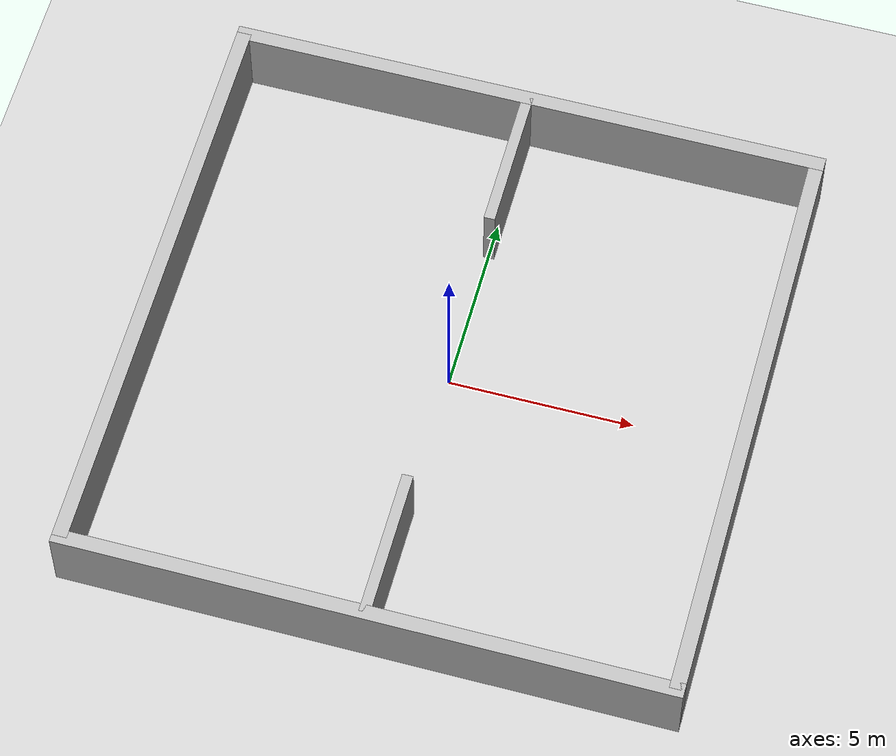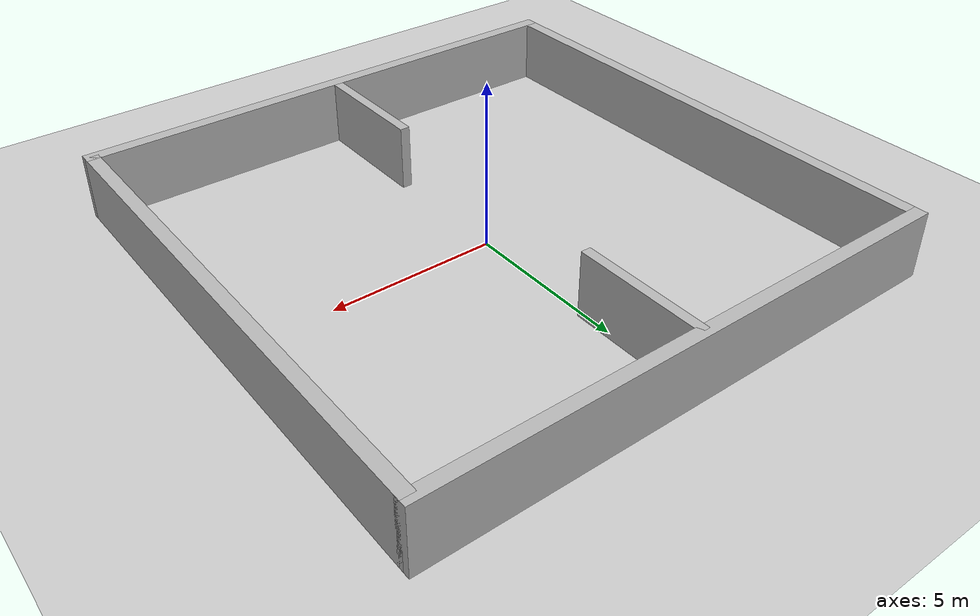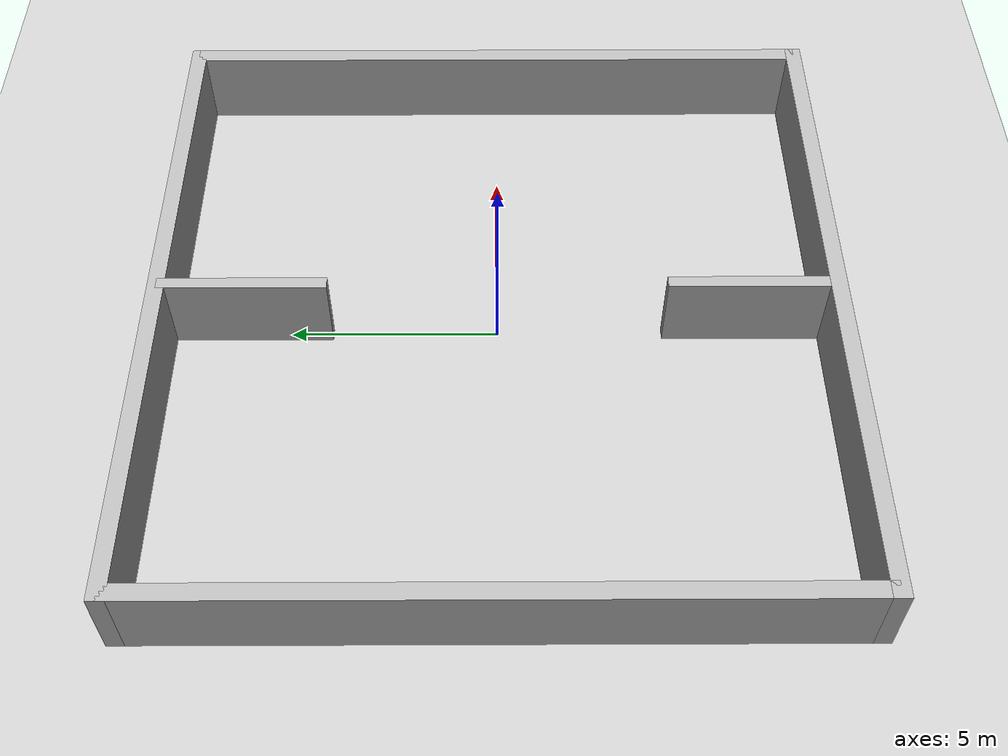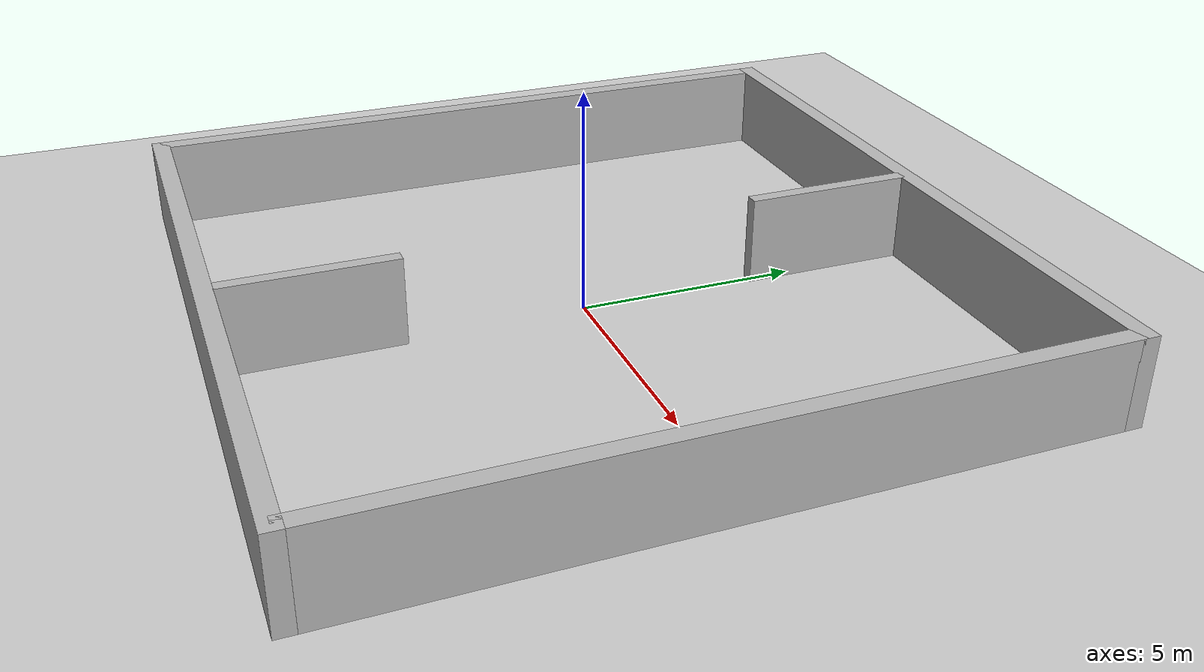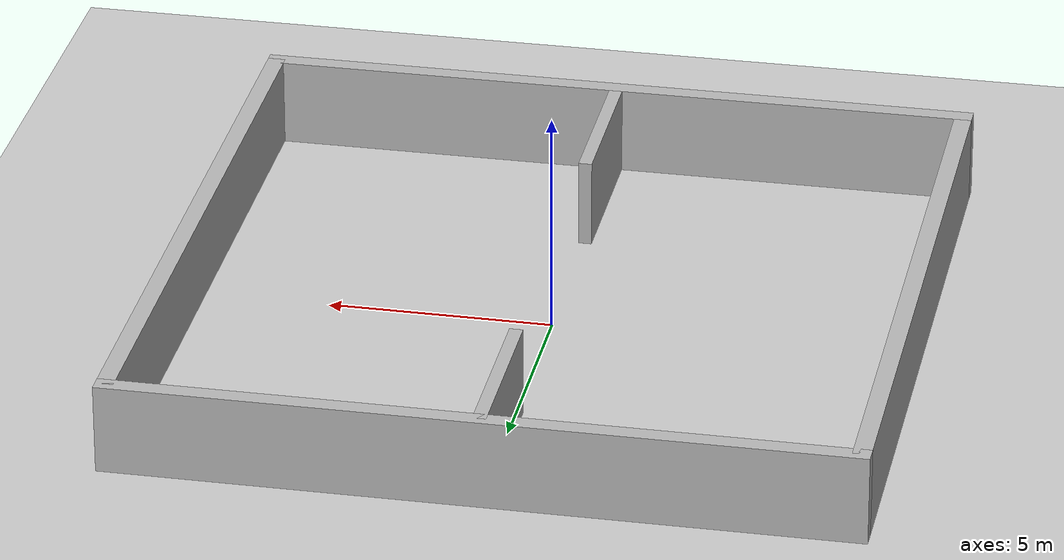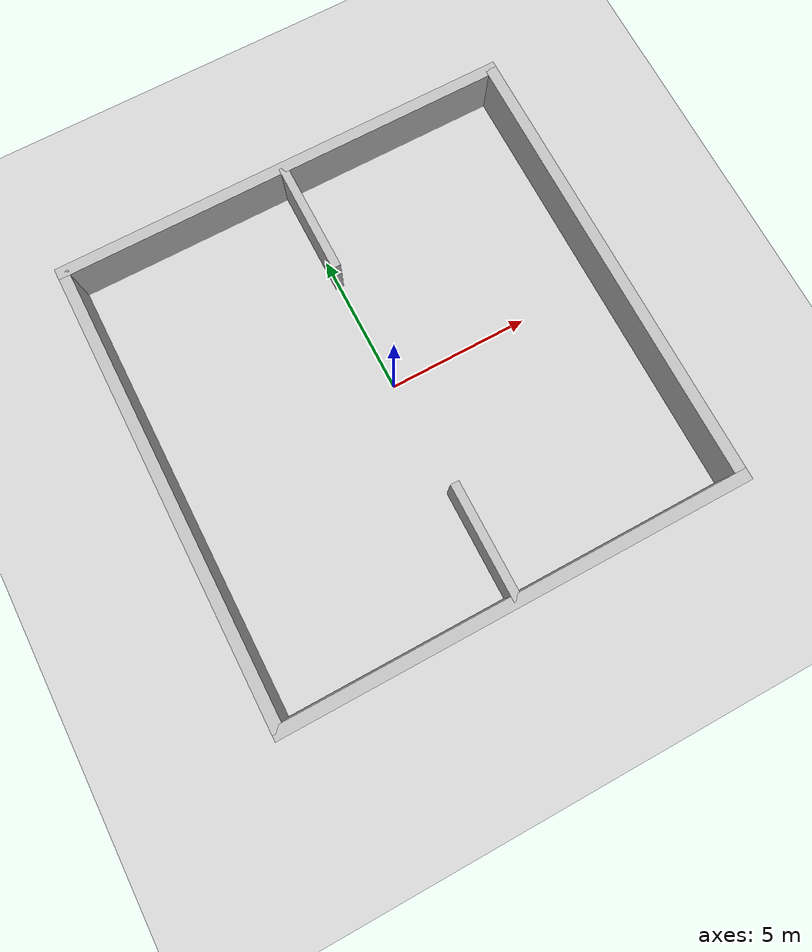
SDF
<sdf version="1.6">
 <world name="factory_world">
  <physics type="ode">
   <gravity>0 0 -9.81</gravity>
   <real_time_update_rate>1000</real_time_update_rate>
   <max_step_size>0.001</max_step_size>
  </physics>
  <include><uri>model://sun</uri></include>
  <include><uri>model://ground_plane</uri></include>
  <model name="north_wall">
   <static>true</static>
   <pose>0 8 1 0 0 0</pose>
   <link name="l">
    <collision name="c"><geometry><box><size>16.4 0.4 2</size></box></geometry></collision>
    <visual name="v"><geometry><box><size>16.4 0.4 2</size></box></geometry></visual>
   </link>
  </model>
  <model name="south_wall">
   <static>true</static>
   <pose>0 -8 1 0 0 0</pose>
   <link name="l">
    <collision name="c"><geometry><box><size>16.4 0.4 2</size></box></geometry></collision>
    <visual name="v"><geometry><box><size>16.4 0.4 2</size></box></geometry></visual>
   </link>
  </model>
  <model name="east_wall">
   <static>true</static>
   <pose>8 0 1 0 0 0</pose>
   <link name="l">
    <collision name="c"><geometry><box><size>0.4 16 2</size></box></geometry></collision>
    <visual name="v"><geometry><box><size>0.4 16 2</size></box></geometry></visual>
   </link>
  </model>
  <model name="west_wall">
   <static>true</static>
   <pose>-8 0 1 0 0 0</pose>
   <link name="l">
    <collision name="c"><geometry><box><size>0.4 16 2</size></box></geometry></collision>
    <visual name="v"><geometry><box><size>0.4 16 2</size></box></geometry></visual>
   </link>
  </model>
  <model name="middle_wall">
   <static>true</static>
   <pose>0 -6 1 0 0 1.57</pose>
   <link name="l">
    <collision name="c"><geometry><box><size>4 0.3 2</size></box></geometry></collision>
    <visual name="v"><geometry><box><size>4 0.3 2</size></box></geometry></visual>
   </link>
  </model>
  <model name="middle_wall2">
   <static>true</static>
   <pose>0 6 1 0 0 1.57</pose>
   <link name="l">
    <collision name="c"><geometry><box><size>4 0.3 2</size></box></geometry></collision>
    <visual name="v"><geometry><box><size>4 0.3 2</size></box></geometry></visual>
   </link>
  </model>
  <model name="crowd_controller">
   <static>true</static>
   <link name="link">
    <visual name="visual"><geometry><box><size>0.01 0.01 0.01</size></box></geometry></visual>
   </link>
   <plugin name="human_crowd_controller" filename="libHumanControllerPlugin.so">
    <human_prefix>human</human_prefix>
    <robot_name>surenaV</robot_name>
    <xmin>-8.5</xmin>
    <xmax>8.5</xmax>
    <ymin>0.0</ymin>
    <ymax>12.0</ymax>
    <v0>0.2</v0>
    <v_max>0.4</v_max>
    <tau>0.1</tau>
    <max_acc>1.0</max_acc>
    <A_human>1.5</A_human>
    <B_human>0.5</B_human>
    <R_human>0.8</R_human>
    <hard_human_radius>1.0</hard_human_radius>
    <A_robot>3.0</A_robot>
    <B_robot>0.5</B_robot>
    <R_robot>0.7</R_robot>
    <hard_robot_radius>1.0</hard_robot_radius>
    <A_obs>4.0</A_obs>
    <B_obs>0.4</B_obs>
    <R_obs_margin>0.8</R_obs_margin>
    <wander_heading_noise>0.12</wander_heading_noise>
    <heading_change_rate>0.3</heading_change_rate>
    <tangential_gain>0.2</tangential_gain>
    <wall_turn_cooldown_s>0.8</wall_turn_cooldown_s>
   </plugin>
  </model>
 </world>
</sdf>
